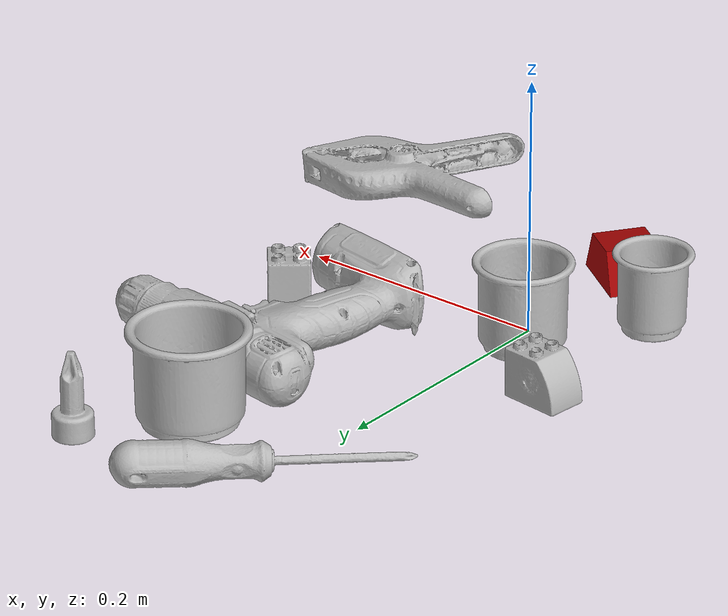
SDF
<sdf version="1.4">
  <world name="default">
    <light name="light1" type="point">
      <pose>0 0 1 0 0 0</pose>
      <diffuse>3 3 3 1</diffuse>
      <specular>3 3 3 1</specular>
    </light>
    <light name="light2" type="point">
      <pose>0 0.5 2 0 0 0</pose>
      <diffuse>1 1 1 1</diffuse>
      <specular>1 1 1 1</specular>
    </light>
    <light name="light3" type="point">
      <pose>0 0.5 2 0 0 0</pose>
      <diffuse>3 3 3 1</diffuse>
      <specular>3 3 3 1</specular>
    </light>
    <scene>
      <ambient>0.7 0.7 0.7</ambient>
    </scene>
    <model name="cup1">
      <link name="link_cup1">
        <collision name="default">
          <geometry>
            <mesh>
              <uri>model://b_cups/collision_meshes/collision.obj</uri>
              <scale>1.0 1.0 1.0</scale>
            </mesh>
          </geometry>
          <surface>
            <friction>
              <ode>
                <mu>0.5</mu>
                <mu2>0.5</mu2>
              </ode>
            </friction>
          <contact>
        <ode>
            <max_vel>0</max_vel>
            <min_depth>0.0001</min_depth>
            <kp>1e8</kp>
        </ode>
    </contact></surface>
        </collision>
        <visual name="default">
          <geometry>
            <mesh>
              <uri>model://b_cups/visual_meshes/visual.dae</uri>
              <scale>1.0 1.0 1.0</scale>
            </mesh>
          </geometry>
        </visual>
        <inertial>
          <mass>0.048613063991069794</mass>
          <pose>0.0005182003951631486 0.0018058597343042493 -0.0013381808530539274 0.11356326710502956 0.03872484102688303 -0.34569225342860055</pose>
          <inertia>
            <ixx>3.1820662e-05</ixx>
            <iyy>3.121653e-05</iyy>
            <izz>2.6776484e-05</izz>
            <ixy>0</ixy>
            <ixz>0</ixz>
            <iyz>0</iyz>
          </inertia>
        </inertial>
      </link>
      <pose>-0.06938476860523224 -0.0583890825510025 0.031996119767427444 -0.007629553269653352 -0.0038409034463142886 2.192589421493451</pose>
    </model>
    <model name="cup2">
      <link name="link_cup2">
        <collision name="default">
          <geometry>
            <mesh>
              <uri>model://e_cups/collision_meshes/collision.obj</uri>
              <scale>1.0 1.0 1.0</scale>
            </mesh>
          </geometry>
          <surface>
            <friction>
              <ode>
                <mu>0.5</mu>
                <mu2>0.5</mu2>
              </ode>
            </friction>
          <contact>
        <ode>
            <max_vel>0</max_vel>
            <min_depth>0.0001</min_depth>
            <kp>1e8</kp>
        </ode>
    </contact></surface>
        </collision>
        <visual name="default">
          <geometry>
            <mesh>
              <uri>model://e_cups/visual_meshes/visual.dae</uri>
              <scale>1.0 1.0 1.0</scale>
            </mesh>
          </geometry>
        </visual>
        <inertial>
          <mass>0.07592208683490753</mass>
          <pose>0.0011355738388374448 0.002879784908145666 -0.003882972290739417 0.695241209711482 0.0876783799590152 -0.5235234031188288</pose>
          <inertia>
            <ixx>6.6944274e-05</ixx>
            <iyy>6.996636e-05</iyy>
            <izz>6.400647e-05</izz>
            <ixy>0</ixy>
            <ixz>0</ixz>
            <iyz>0</iyz>
          </inertia>
        </inertial>
      </link>
      <pose>-0.012078315019607544 0.0231216698884964 0.0355999693274498 1.977281739434293e-06 -1.2598997631835657e-06 -1.745638315940504</pose>
    </model>
    <model name="cup3">
      <link name="link_cup3">
        <collision name="default">
          <geometry>
            <mesh>
              <uri>model://h_cups/collision_meshes/collision.obj</uri>
              <scale>1.0 1.0 1.0</scale>
            </mesh>
          </geometry>
          <surface>
            <friction>
              <ode>
                <mu>0.5</mu>
                <mu2>0.5</mu2>
              </ode>
            </friction>
          <contact>
        <ode>
            <max_vel>0</max_vel>
            <min_depth>0.0001</min_depth>
            <kp>1e8</kp>
        </ode>
    </contact></surface>
        </collision>
        <visual name="default">
          <geometry>
            <mesh>
              <uri>model://h_cups/visual_meshes/visual.dae</uri>
              <scale>1.0 1.0 1.0</scale>
            </mesh>
          </geometry>
        </visual>
        <inertial>
          <mass>0.07054857164621353</mass>
          <pose>-2.7030857381760143e-05 0.0002301865170011297 -0.0018405391601845622 -0.024362378998248252 0.0654525662963329 0.12884761756284485</pose>
          <inertia>
            <ixx>9.1110225e-05</ixx>
            <iyy>9.002296e-05</iyy>
            <izz>9.5549614e-05</izz>
            <ixy>0</ixy>
            <ixz>0</ixz>
            <iyz>0</iyz>
          </inertia>
        </inertial>
      </link>
      <pose>0.10085557401180267 0.2643638551235199 0.0377579964697361 1.4100170378950575e-06 9.415990631710621e-07 -0.35164177245295714</pose>
    </model>
    <model name="toy1">
      <link name="link_toy1">
        <collision name="default">
          <geometry>
            <mesh>
              <uri>model://f_lego_duplo/collision_meshes/collision.obj</uri>
              <scale>1.0 1.0 1.0</scale>
            </mesh>
          </geometry>
          <surface>
            <friction>
              <ode>
                <mu>0.5</mu>
                <mu2>0.5</mu2>
              </ode>
            </friction>
          <contact>
        <ode>
            <max_vel>0</max_vel>
            <min_depth>0.0001</min_depth>
            <kp>1e8</kp>
        </ode>
    </contact></surface>
        </collision>
        <visual name="default">
          <geometry>
            <mesh>
              <uri>model://f_lego_duplo/visual_meshes/visual.dae</uri>
              <scale>1.0 1.0 1.0</scale>
            </mesh>
          </geometry>
        </visual>
        <inertial>
          <mass>0.027637142688035965</mass>
          <pose>2.3694037736277096e-05 0.0001339315203949809 0.0018837873358279467 0.029838580482088747 -0.014425059949813135 -0.6756637855802661</pose>
          <inertia>
            <ixx>5.8398805e-06</ixx>
            <iyy>5.8919077e-06</iyy>
            <izz>5.069264e-06</izz>
            <ixy>0</ixy>
            <ixz>0</ixz>
            <iyz>0</iyz>
          </inertia>
        </inertial>
      </link>
      <pose>0.16686958074569702 0.07505188882350922 0.021871017292141914 -1.8640769983386316e-06 1.7085672035530782e-06 0.709565458205009</pose>
    </model>
    <model name="toy2">
      <link name="link_toy2">
        <collision name="default">
          <geometry>
            <mesh>
              <uri>model://d_toy_airplane/collision_meshes/collision.obj</uri>
              <scale>1.0 1.0 1.0</scale>
            </mesh>
          </geometry>
          <surface>
            <friction>
              <ode>
                <mu>0.5</mu>
                <mu2>0.5</mu2>
              </ode>
            </friction>
          <contact>
        <ode>
            <max_vel>0</max_vel>
            <min_depth>0.0001</min_depth>
            <kp>1e8</kp>
        </ode>
    </contact></surface>
        </collision>
        <visual name="default">
          <geometry>
            <mesh>
              <uri>model://d_toy_airplane/visual_meshes/visual.dae</uri>
              <scale>1.0 1.0 1.0</scale>
            </mesh>
          </geometry>
        </visual>
        <inertial>
          <mass>0.017859498038887978</mass>
          <pose>9.410335042048246e-05 -5.809318827232346e-05 -0.011728094890713692 0.0002667298520076861 0.004679004392369758 0.5194091511239993</pose>
          <inertia>
            <ixx>5.35393e-06</ixx>
            <iyy>5.3579683e-06</iyy>
            <izz>1.6163864e-06</izz>
            <ixy>0</ixy>
            <ixz>0</ixz>
            <iyz>0</iyz>
          </inertia>
        </inertial>
      </link>
      <pose>0.15113955736160278 0.33295145630836487 0.03333877772092819 -3.6829281955045895e-05 -0.00017940941481816474 2.122690718101298</pose>
    </model>
    <model name="toy3">
      <link name="link_toy3">
        <collision name="default">
          <geometry>
            <mesh>
              <uri>model://prism/collision_meshes/collision.obj</uri>
              <scale>0.5 0.5 0.5</scale>
            </mesh>
          </geometry>
          <surface>
            <friction>
              <ode>
                <mu>0.5</mu>
                <mu2>0.5</mu2>
              </ode>
            </friction>
          <contact>
        <ode>
            <max_vel>0</max_vel>
            <min_depth>0.0001</min_depth>
            <kp>1e8</kp>
        </ode>
    </contact></surface>
        </collision>
        <visual name="default">
          <geometry>
            <mesh>
              <uri>model://prism/visual_meshes/visual.dae</uri>
              <scale>0.5 0.5 0.5</scale>
            </mesh>
          </geometry>
        </visual>
        <inertial>
          <mass>0.04761093109846115</mass>
          <pose>-4.92679828312248e-05 -2.480786349678965e-07 -0.001693455153144896 0.0 0.006559181231804993 0.0</pose>
          <inertia>
            <ixx>1.074207e-05</ixx>
            <iyy>1.2981929e-05</iyy>
            <izz>1.590131e-05</izz>
            <ixy>0</ixy>
            <ixz>0</ixz>
            <iyz>0</iyz>
          </inertia>
        </inertial>
      </link>
      <pose>-0.0025787861086428165 -0.11634951084852219 0.016085000708699226 2.6329738847530348e-08 -4.685435515310551e-08 -0.6138570555319138</pose>
    </model>
    <model name="toy4">
      <link name="link_toy4">
        <collision name="default">
          <geometry>
            <mesh>
              <uri>model://d_lego_duplo/collision_meshes/collision.obj</uri>
              <scale>1.0 1.0 1.0</scale>
            </mesh>
          </geometry>
          <surface>
            <friction>
              <ode>
                <mu>0.5</mu>
                <mu2>0.5</mu2>
              </ode>
            </friction>
          <contact>
        <ode>
            <max_vel>0</max_vel>
            <min_depth>0.0001</min_depth>
            <kp>1e8</kp>
        </ode>
    </contact></surface>
        </collision>
        <visual name="default">
          <geometry>
            <mesh>
              <uri>model://d_lego_duplo/visual_meshes/visual.dae</uri>
              <scale>1.0 1.0 1.0</scale>
            </mesh>
          </geometry>
        </visual>
        <inertial>
          <mass>0.06000049039721489</mass>
          <pose>0.0028305640444159508 0.0001636611996218562 0.000858980929479003 0.08010949527318252 -0.38355210287845315 0.0010297055105996263</pose>
          <inertia>
            <ixx>1.1615211e-05</ixx>
            <iyy>1.6485134e-05</iyy>
            <izz>1.5897598e-05</izz>
            <ixy>0</ixy>
            <ixz>0</ixz>
            <iyz>0</iyz>
          </inertia>
        </inertial>
      </link>
      <pose>-0.07456517219543457 0.08029411733150482 0.02173951268196106 -3.239416722960397e-05 -3.071325762668709e-05 -0.11185430374912014</pose>
    </model>
    <model name="hardware1">
      <link name="link_hardware1">
        <collision name="default">
          <geometry>
            <mesh>
              <uri>model://phillips_screwdriver/collision_meshes/collision.obj</uri>
              <scale>1.0 1.0 1.0</scale>
            </mesh>
          </geometry>
          <surface>
            <friction>
              <ode>
                <mu>0.5</mu>
                <mu2>0.5</mu2>
              </ode>
            </friction>
          <contact>
        <ode>
            <max_vel>0</max_vel>
            <min_depth>0.0001</min_depth>
            <kp>1e8</kp>
        </ode>
    </contact></surface>
        </collision>
        <visual name="default">
          <geometry>
            <mesh>
              <uri>model://phillips_screwdriver/visual_meshes/visual.dae</uri>
              <scale>1.0 1.0 1.0</scale>
            </mesh>
          </geometry>
        </visual>
        <inertial>
          <mass>0.11704345047473907</mass>
          <pose>-0.04777182638645172 0.0010362302418798208 -0.0004555549821816385 -0.1571668982332543 0.0058509943133797405 -0.002156735283865719</pose>
          <inertia>
            <ixx>1.3751404e-05</ixx>
            <iyy>0.00017241857</iyy>
            <izz>0.0001725651</izz>
            <ixy>0</ixy>
            <ixz>0</ixz>
            <iyz>0</iyz>
          </inertia>
        </inertial>
      </link>
      <pose>0.0054388754069805145 0.3003999888896942 0.015409648418426514 0.06561934604731036 0.03756809774658647 -2.3276264198220655</pose>
    </model>
    <model name="hardware2">
      <link name="link_hardware2">
        <collision name="default">
          <geometry>
            <mesh>
              <uri>model://large_clamp/collision_meshes/collision.obj</uri>
              <scale>1.0 1.0 1.0</scale>
            </mesh>
          </geometry>
          <surface>
            <friction>
              <ode>
                <mu>0.5</mu>
                <mu2>0.5</mu2>
              </ode>
            </friction>
          <contact>
        <ode>
            <max_vel>0</max_vel>
            <min_depth>0.0001</min_depth>
            <kp>1e8</kp>
        </ode>
    </contact></surface>
        </collision>
        <visual name="default">
          <geometry>
            <mesh>
              <uri>model://large_clamp/visual_meshes/visual.dae</uri>
              <scale>1.0 1.0 1.0</scale>
            </mesh>
          </geometry>
        </visual>
        <inertial>
          <mass>0.18953841924667358</mass>
          <pose>0.00636935792863369 0.0003585682134144008 -0.00018398056272417307 -0.002133075536327147 0.009671586607470332 0.026633167384546762</pose>
          <inertia>
            <ixx>0.00016722476</ixx>
            <iyy>0.0003175689</iyy>
            <izz>0.00045940367</izz>
            <ixy>0</ixy>
            <ixz>0</ixz>
            <iyz>0</iyz>
          </inertia>
        </inertial>
      </link>
      <pose>0.22163571417331696 -0.13230226933956146 0.018504202365875244 -0.011566852239486487 0.04692843945246207 0.3977045625942536</pose>
    </model>
    <model name="hardware3">
      <link name="link_hardware3">
        <collision name="default">
          <geometry>
            <mesh>
              <uri>model://power_drill/collision_meshes/collision.obj</uri>
              <scale>1.0 1.0 1.0</scale>
            </mesh>
          </geometry>
          <surface>
            <friction>
              <ode>
                <mu>0.5</mu>
                <mu2>0.5</mu2>
              </ode>
            </friction>
          <contact>
        <ode>
            <max_vel>0</max_vel>
            <min_depth>0.0001</min_depth>
            <kp>1e8</kp>
        </ode>
    </contact></surface>
        </collision>
        <visual name="default">
          <geometry>
            <mesh>
              <uri>model://power_drill/visual_meshes/visual.dae</uri>
              <scale>1.0 1.0 1.0</scale>
            </mesh>
          </geometry>
        </visual>
        <inertial>
          <mass>0.5207164287567139</mass>
          <pose>-0.014780543744564056 0.014369428157806396 0.0012414171360433102 0.004609162650930739 0.004073022346756156 -0.183626968168983</pose>
          <inertia>
            <ixx>0.0021219437</ixx>
            <iyy>0.00083487434</iyy>
            <izz>0.002802402</izz>
            <ixy>0</ixy>
            <ixz>0</ixz>
            <iyz>0</iyz>
          </inertia>
        </inertial>
      </link>
      <pose>0.13399529457092285 0.12875869870185852 0.027312444522976875 -0.03030605010949942 -0.04725286410955499 -0.124714831252859</pose>
    </model>
  <physics type="ode">
      <max_contacts>50</max_contacts>
      <ode>
        <solver>
          <type>quick</type>
          <iters>75</iters>
        </solver>
        <constraints>
          <contact_max_correcting_vel>0</contact_max_correcting_vel>
          <contact_surface_layer>0</contact_surface_layer>
        </constraints>
      </ode>
    </physics></world>
</sdf>
